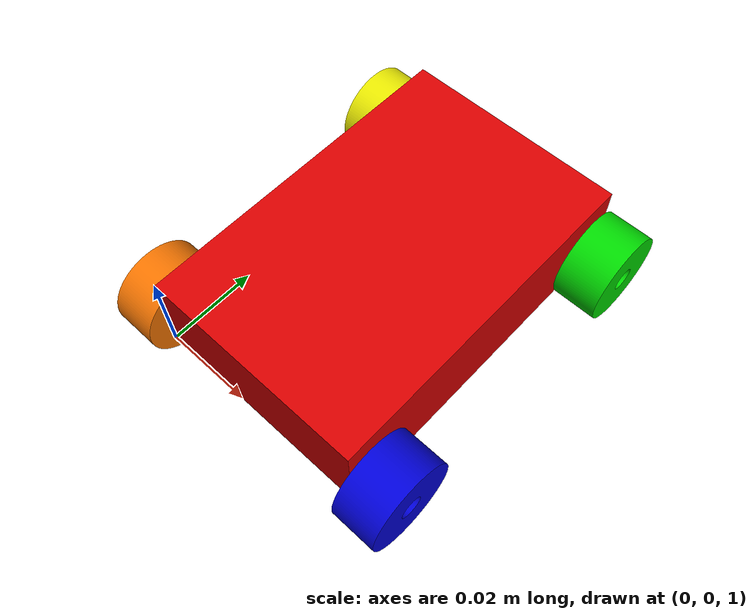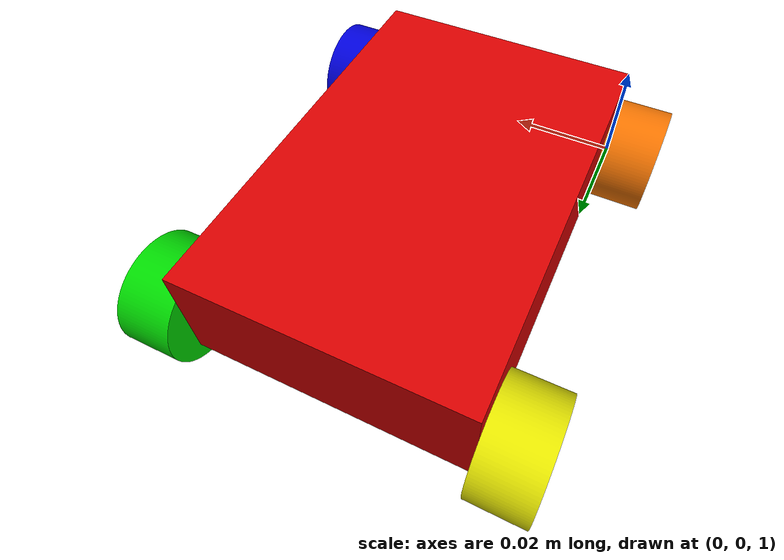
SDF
<?xml version="1.0" ?>

<sdf version="1.11">

<world name="default">

  <physics name="1ms" type="ignored">
    <max_step_size>0.001</max_step_size>
    <real_time_factor>1.0</real_time_factor>
  </physics>

  <!-- Luz -->
  <light type="directional" name="sun">
    <cast_shadows>true</cast_shadows>
    <pose>0 0 10 0 0 0</pose>

    <diffuse>0.8 0.8 0.8 1</diffuse>
    <specular>0.2 0.2 0.2 1</specular>

    <direction>-0.5 0.1 -0.9</direction>
  </light>

  <!-- CHÃO -->
  <model name="ground_plane">
    <static>true</static>

    <link name="link">

      <collision name="collision">
        <geometry>
          <plane>
            <normal>0 0 1</normal>
            <size>100 100</size>
          </plane>
        </geometry>
      </collision>

      <visual name="visual">
        <geometry>
          <plane>
            <normal>0 0 1</normal>
            <size>100 100</size>
          </plane>
        </geometry>

      </visual>

    </link>
  </model>

  <!-- SEU DRONE -->

  <include>
    <uri>
      file:///home/lmnr31/curso_coen_ws/src/test2/test2.sdf
    </uri>

    <pose>0 0 1 0 0 0</pose>

  </include>
  <physics type="ode">

    <max_step_size>0.001</max_step_size>

    <real_time_factor>1.0</real_time_factor>

    <real_time_update_rate>1000</real_time_update_rate>

    </physics>

</world>

</sdf>

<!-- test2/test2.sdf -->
<sdf version='1.11'>
  <model name='test2'>
    <link name='base_link'>
      <inertial>
        <pose>0.025000000000000001 0.037499999999999999 0.010134418769051049 0 0 0</pose>
        <mass>0.150</mass>
        <inertia>
          <ixx>0.00027887725535692698</ixx>
          <ixy>0</ixy>
          <ixz>0</ixz>
          <iyy>0.00013865033813268611</iyy>
          <iyz>-8.1315162936412833e-20</iyz>
          <izz>0.0003791171509922924</izz>
        </inertia>
      </inertial>
      <collision name='base_link_collision_collision'>
        <pose>0 0 0 0 0 0</pose>
        <geometry>
          <mesh>
            <scale>0.001 0.001 0.001</scale>
            <uri>meshes/base_link.stl</uri>
          </mesh>
        </geometry>
      </collision>
      <visual name='base_link_visual_visual'>
        <pose>0 0 0 0 0 0</pose>
        <geometry>
          <mesh>
            <scale>0.001 0.001 0.001</scale>
            <uri>meshes/base_link.stl</uri>
          </mesh>
        </geometry>
        <material>
          <ambient>0.4 0 0 1</ambient>
          <diffuse>0.85 0 0 1</diffuse>
          <specular>0.3 0.3 0.3 1</specular>
        </material>
      </visual>
    </link>
    <joint name='base_link_Revolucionar-1' type='revolute'>
      <pose relative_to='base_link'>0.050000000000000003 0.070000000000000007 0.0050000000000000001 0 -1.5707963267948966 0</pose>
      <parent>base_link</parent>
      <child>roda1</child>
      <axis>
        <xyz>0 0 1</xyz>
        <limit>
          <lower>-inf</lower>
          <upper>inf</upper>
          <effort>20</effort>
          <velocity>1.0</velocity>
        </limit>
        <dynamics>
          <spring_reference>0</spring_reference>
          <spring_stiffness>0</spring_stiffness>
          <damping>0.10</damping>
          <friction>0.0</friction>
        </dynamics>
      </axis>
    </joint>
    <link name='roda1'>
      <pose relative_to='base_link_Revolucionar-1'>0 0 0 0 0 0</pose>
      <inertial>
        <pose>-1.7426060594516461e-14 -1.7763568394002511e-17 -0.0050000000000000001 0 0 0</pose>
        <mass>0.02312015843501232</mass>
        <inertia>
          <ixx>8.0679719585512438e-07</ixx>
          <ixy>5.082197683525802e-21</ixy>
          <ixz>0</ixz>
          <iyy>8.0679719523294141e-07</iyy>
          <iyz>2.7105054312137611e-20</iyz>
          <izz>1.2282584171712429e-06</izz>
        </inertia>
      </inertial>
      <collision name='roda1_collision_collision'>
        <pose>-0.025000000000000001 -0.125 -0.01 0 0 0</pose>
        <geometry>
          <mesh>
            <scale>0.001 0.001 0.001</scale>
            <uri>meshes/roda1.stl</uri>
          </mesh>
        </geometry>
      </collision>
      <visual name='roda1_visual_visual'>
        <pose>-0.025000000000000001 -0.125 -0.01 0 0 0</pose>
        <geometry>
          <mesh>
            <scale>0.001 0.001 0.001</scale>
            <uri>meshes/roda1.stl</uri>
          </mesh>
        </geometry>
        <material>
          <ambient>0 0.4 0 1</ambient>
          <diffuse>0 0.85 0 1</diffuse>
          <specular>0.3 0.3 0.3 1</specular>
        </material>
      </visual>
    </link>
    <joint name='base_link_Revolucionar-2' type='revolute'>
      <pose relative_to='base_link'>0.050000000000000003 0.0050000000000000001 0.0050000000000000001 0 -1.5707963267948966 0</pose>
      <parent>base_link</parent>
      <child>roda2</child>
      <axis>
        <xyz>0 0 1</xyz>
        <limit>
          <lower>-inf</lower>
          <upper>inf</upper>
          <effort>20</effort>
          <velocity>1.0</velocity>
        </limit>
        <dynamics>
          <spring_reference>0</spring_reference>
          <spring_stiffness>0</spring_stiffness>
          <damping>0.10</damping>
          <friction>0.0</friction>
        </dynamics>
      </axis>
    </joint>
    <link name='roda2'>
      <pose relative_to='base_link_Revolucionar-2'>0 0 0 0 0 0</pose>
      <inertial>
        <pose>-1.744382416291046e-14 -1.7763568394002511e-17 -0.0050000000000000001 0 0 0</pose>
        <mass>0.02312015843501232</mass>
        <inertia>
          <ixx>8.0679719585512438e-07</ixx>
          <ixy>-8.5020932080650397e-20</ixy>
          <ixz>-1.6940658945086011e-21</ixz>
          <iyy>8.0679719523299562e-07</iyy>
          <iyz>-8.4703294725430034e-22</iyz>
          <izz>1.2282584171712609e-06</izz>
        </inertia>
      </inertial>
      <collision name='roda2_collision_collision'>
        <pose>-0.055 -0.125 -0.01 0 0 0</pose>
        <geometry>
          <mesh>
            <scale>0.001 0.001 0.001</scale>
            <uri>meshes/roda2.stl</uri>
          </mesh>
        </geometry>
      </collision>
      <visual name='roda2_visual_visual'>
        <pose>-0.055 -0.125 -0.01 0 0 0</pose>
        <geometry>
          <mesh>
            <scale>0.001 0.001 0.001</scale>
            <uri>meshes/roda2.stl</uri>
          </mesh>
        </geometry>
        <material>
          <ambient>0 0 0.4 1</ambient>
          <diffuse>0 0 0.85 1</diffuse>
          <specular>0.3 0.3 0.3 1</specular>
        </material>
      </visual>
    </link>
    <joint name='base_link_Revolucionar-3' type='revolute'>
      <pose relative_to='base_link'>0 0.070000000000000007 0.0050000000000000001 0 -1.5707963267948966 0</pose>
      <parent>base_link</parent>
      <child>roda4</child>
      <axis>
        <xyz>0 0 1</xyz>
        <limit>
          <lower>-inf</lower>
          <upper>inf</upper>
          <effort>20</effort>
          <velocity>1.0</velocity>
        </limit>
        <dynamics>
          <spring_reference>0</spring_reference>
          <spring_stiffness>0</spring_stiffness>
          <damping>0.10</damping>
          <friction>0.0</friction>
        </dynamics>
      </axis>
    </joint>
    <link name='roda4'>
      <pose relative_to='base_link_Revolucionar-3'>0 0 0 0 0 0</pose>
      <inertial>
        <pose>-1.744382416291046e-14 1.7763568394002511e-17 0.0050000000000000001 0 0 0</pose>
        <mass>0.02312015843501232</mass>
        <inertia>
          <ixx>8.0679719585508372e-07</ixx>
          <ixy>3.8963515573697822e-20</ixy>
          <ixz>3.0704944337968391e-21</ixz>
          <iyy>8.0679719523298821e-07</iyy>
          <iyz>-1.6940658945086011e-21</iyz>
          <izz>1.2282584171711481e-06</izz>
        </inertia>
      </inertial>
      <collision name='roda4_collision_collision'>
        <pose>-0.055 0.10000000000000001 0.01 3.1415926535897931 0 0</pose>
        <geometry>
          <mesh>
            <scale>0.001 0.001 0.001</scale>
            <uri>meshes/roda4.stl</uri>
          </mesh>
        </geometry>
      </collision>
      <visual name='roda4_visual_visual'>
        <pose>-0.055 0.10000000000000001 0.01 3.1415926535897931 0 0</pose>
        <geometry>
          <mesh>
            <scale>0.001 0.001 0.001</scale>
            <uri>meshes/roda4.stl</uri>
          </mesh>
        </geometry>
        <material>
          <ambient>0.4 0.4 0 1</ambient>
          <diffuse>0.9 0.9 0 1</diffuse>
          <specular>0.3 0.3 0.3 1</specular>
        </material>
      </visual>
    </link>
    <joint name='base_link_Revolucionar-4' type='revolute'>
      <pose relative_to='base_link'>0 0.0050000000000000001 0.0050000000000000001 -3.1415926535897931 -1.5707963267948966 0</pose>
      <parent>base_link</parent>
      <child>roda3</child>
      <axis>
        <xyz>0 0 -1</xyz>
        <limit>
          <lower>-inf</lower>
          <upper>inf</upper>
          <effort>20</effort>
          <velocity>1.0</velocity>
        </limit>
        <dynamics>
          <spring_reference>0</spring_reference>
          <spring_stiffness>0</spring_stiffness>
          <damping>0.10</damping>
          <friction>0.0</friction>
        </dynamics>
      </axis>
    </joint>
    <link name='roda3'>
      <pose relative_to='base_link_Revolucionar-4'>0 0 0 0 0 0</pose>
      <inertial>
        <pose>1.7426060594516461e-14 1.7763568394002511e-17 -0.0050000000000000001 0 0 0</pose>
        <mass>0.02312015843501232</mass>
        <inertia>
          <ixx>8.0679719585505852e-07</ixx>
          <ixy>6.4586262228140401e-21</ixy>
          <ixz>-3.1763735522036258e-22</ixz>
          <iyy>8.0679719523293971e-07</iyy>
          <iyz>1.058791184067875e-21</iyz>
          <izz>1.2282584171711481e-06</izz>
        </inertia>
      </inertial>
      <collision name='roda3_collision_collision'>
        <pose>0.025000000000000019 0.10000000000000001 -0.01 0 0 3.1415926535897931</pose>
        <geometry>
          <mesh>
            <scale>0.001 0.001 0.001</scale>
            <uri>meshes/roda3.stl</uri>
          </mesh>
        </geometry>
      </collision>
      <visual name='roda3_visual_visual'>
        <pose>0.025000000000000019 0.10000000000000001 -0.01 0 0 3.1415926535897931</pose>
        <geometry>
          <mesh>
            <scale>0.001 0.001 0.001</scale>
            <uri>meshes/roda3.stl</uri>
          </mesh>
        </geometry>
        <material>
          <ambient>0.4 0.2 0 1</ambient>
          <diffuse>0.95 0.45 0 1</diffuse>
          <specular>0.3 0.3 0.3 1</specular>
        </material>
      </visual>
    </link>

    <!-- PLUGINS PARA CONTROLE INDIVIDUAL DE RODAS -->
    <plugin filename="gz-sim-joint-controller-system" name="gz::sim::systems::JointController">
      <joint_name>base_link_Revolucionar-1</joint_name>
      <topic>/test2/roda1_cmd</topic>
    </plugin>

    <plugin filename="gz-sim-joint-controller-system" name="gz::sim::systems::JointController">
      <joint_name>base_link_Revolucionar-2</joint_name>
      <topic>/test2/roda2_cmd</topic>
    </plugin>

    <plugin filename="gz-sim-joint-controller-system" name="gz::sim::systems::JointController">
      <joint_name>base_link_Revolucionar-3</joint_name>
      <topic>/test2/roda3_cmd</topic>
    </plugin>

    <plugin filename="gz-sim-joint-controller-system" name="gz::sim::systems::JointController">
      <joint_name>base_link_Revolucionar-4</joint_name>
      <topic>/test2/roda4_cmd</topic>
    </plugin>

  </model>
</sdf>
